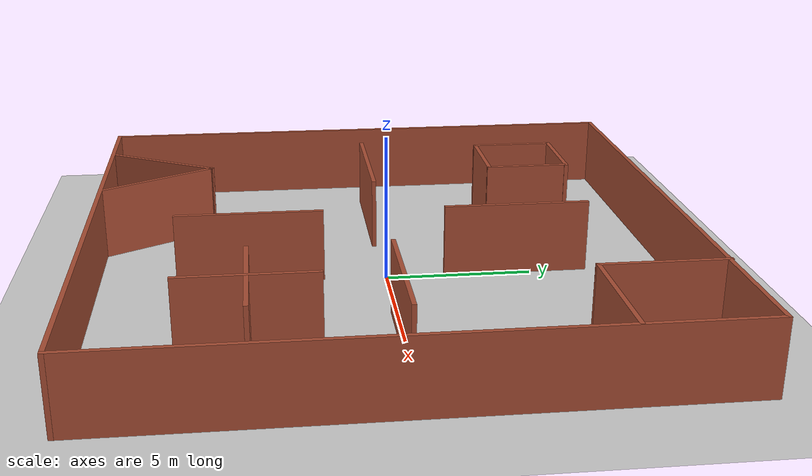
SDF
<sdf version="1.7">
 <world name="default">
  <light name="sun" type="directional">
   <pose>0 0 10 0 -0 0</pose>
   <diffuse>0.8 0.8 0.8 1</diffuse>
   <specular>0.1 0.1 0.1 1</specular>
   <attenuation>
    <range>1000</range>
    <constant>0.9</constant>
    <linear>0.01</linear>
    <quadratic>0.001</quadratic>
   </attenuation>
   <direction>-0.5 0.5 -1</direction>
   <spot><inner_angle>0</inner_angle><outer_angle>0</outer_angle><falloff>0</falloff></spot>
  </light>
  <model name="ground_plane">
   <static>1</static>
   <link name="link">
    <collision name="collision">
     <geometry><plane><normal>0 0 1</normal><size>100 100</size></plane></geometry>
     <surface><friction><ode><mu>100</mu><mu2>50</mu2></ode></friction></surface>
    </collision>
    <visual name="visual">
     <cast_shadows>0</cast_shadows>
     <geometry><plane><normal>0 0 1</normal><size>100 100</size></plane></geometry>
     <material>
      <script><uri>file://media/materials/scripts/gazebo.material</uri><name>Gazebo/Grey</name></script>
     </material>
    </visual>
   </link>
  </model>
  <gravity>0 0 -9.8</gravity>
  <magnetic_field>6e-06 2.3e-05 -4.2e-05</magnetic_field>
  <atmosphere type="adiabatic"/>
  <physics name="default_physics" default="0" type="ode">
   <max_step_size>0.001</max_step_size>
   <real_time_factor>1</real_time_factor>
   <real_time_update_rate>1000</real_time_update_rate>
  </physics>
  <scene><ambient>0.4 0.4 0.4 1</ambient><background>0.7 0.7 0.7 1</background><shadows>1</shadows></scene>
  <spherical_coordinates>
   <surface_model>EARTH_WGS84</surface_model>
   <latitude_deg>0</latitude_deg>
   <longitude_deg>0</longitude_deg>
   <elevation>0</elevation>
   <heading_deg>0</heading_deg>
  </spherical_coordinates>
  <model name="bookshelf">
   <static>1</static>
   <link name="link">
    <inertial><mass>1</mass></inertial>
    <collision name="back">
     <pose>0 0.005 0.6 0 -0 0</pose>
     <geometry><box><size>0.9 0.01 1.2</size></box></geometry>
    </collision>
    <visual name="visual1">
     <pose>0 0.005 0.6 0 -0 0</pose>
     <geometry><box><size>0.9 0.01 1.2</size></box></geometry>
     <material>
      <script><uri>file://media/materials/scripts/gazebo.material</uri><name>Gazebo/Wood</name></script>
     </material>
    </visual>
    <collision name="left_side">
     <pose>0.45 -0.195 0.6 0 -0 0</pose>
     <geometry><box><size>0.02 0.4 1.2</size></box></geometry>
    </collision>
    <visual name="visual2">
     <pose>0.45 -0.195 0.6 0 -0 0</pose>
     <geometry><box><size>0.02 0.4 1.2</size></box></geometry>
     <material>
      <script><uri>file://media/materials/scripts/gazebo.material</uri><name>Gazebo/Wood</name></script>
     </material>
    </visual>
    <collision name="right_side">
     <pose>-0.45 -0.195 0.6 0 -0 0</pose>
     <geometry><box><size>0.02 0.4 1.2</size></box></geometry>
    </collision>
    <visual name="visual3">
     <pose>-0.45 -0.195 0.6 0 -0 0</pose>
     <geometry><box><size>0.02 0.4 1.2</size></box></geometry>
     <material>
      <script><uri>file://media/materials/scripts/gazebo.material</uri><name>Gazebo/Wood</name></script>
     </material>
    </visual>
    <collision name="bottom">
     <pose>0 -0.195 0.03 0 -0 0</pose>
     <geometry><box><size>0.88 0.4 0.06</size></box></geometry>
    </collision>
    <visual name="visual4">
     <pose>0 -0.195 0.03 0 -0 0</pose>
     <geometry><box><size>0.88 0.4 0.06</size></box></geometry>
     <material>
      <script><uri>file://media/materials/scripts/gazebo.material</uri><name>Gazebo/Wood</name></script>
     </material>
    </visual>
    <collision name="top">
     <pose>0 -0.195 1.19 0 -0 0</pose>
     <geometry><box><size>0.88 0.4 0.02</size></box></geometry>
    </collision>
    <visual name="visual5">
     <pose>0 -0.195 1.19 0 -0 0</pose>
     <geometry><box><size>0.88 0.4 0.02</size></box></geometry>
     <material>
      <script><uri>file://media/materials/scripts/gazebo.material</uri><name>Gazebo/Wood</name></script>
     </material>
    </visual>
    <collision name="low_shelf">
     <pose>0 -0.195 0.43 0 -0 0</pose>
     <geometry><box><size>0.88 0.4 0.02</size></box></geometry>
    </collision>
    <visual name="visual6">
     <pose>0 -0.195 0.43 0 -0 0</pose>
     <geometry><box><size>0.88 0.4 0.02</size></box></geometry>
     <material>
      <script><uri>file://media/materials/scripts/gazebo.material</uri><name>Gazebo/Wood</name></script>
     </material>
    </visual>
    <collision name="high_shelf">
     <pose>0 -0.195 0.8 0 -0 0</pose>
     <geometry><box><size>0.88 0.4 0.02</size></box></geometry>
    </collision>
    <visual name="visual7">
     <pose>0 -0.195 0.8 0 -0 0</pose>
     <geometry><box><size>0.88 0.4 0.02</size></box></geometry>
     <material>
      <script><uri>file://media/materials/scripts/gazebo.material</uri><name>Gazebo/Wood</name></script>
     </material>
    </visual>
   </link>
   <pose>4.52748 -4.08894 0 0 -0 0</pose>
  </model>
  <model name="container">
   <pose>-0.141175 0.01174 0 0 -0 0</pose>
   <link name="Wall_10">
    <collision name="Wall_10_Collision">
     <geometry><box><size>19.75 0.15 2.5</size></box></geometry>
     <pose>0 0 1.25 0 -0 0</pose>
    </collision>
    <visual name="Wall_10_Visual">
     <pose>0 0 1.25 0 -0 0</pose>
     <geometry><box><size>19.75 0.15 2.5</size></box></geometry>
     <material>
      <script><uri>file://media/materials/scripts/gazebo.material</uri><name>Gazebo/Bricks</name></script>
      <ambient>1 1 1 1</ambient>
     </material>
     <meta><layer>0</layer></meta>
    </visual>
    <pose>-0 9.77762 0 0 -0 0</pose>
   </link>
   <link name="Wall_11">
    <collision name="Wall_11_Collision">
     <geometry><box><size>19.75 0.15 2.5</size></box></geometry>
     <pose>0 0 1.25 0 -0 0</pose>
    </collision>
    <visual name="Wall_11_Visual">
     <pose>0 0 1.25 0 -0 0</pose>
     <geometry><box><size>19.75 0.15 2.5</size></box></geometry>
     <material>
      <script><uri>file://media/materials/scripts/gazebo.material</uri><name>Gazebo/Bricks</name></script>
      <ambient>1 1 1 1</ambient>
     </material>
     <meta><layer>0</layer></meta>
    </visual>
    <pose>9.8 -0.02238 0 0 -0 -1.5708</pose>
   </link>
   <link name="Wall_12">
    <collision name="Wall_12_Collision">
     <geometry><box><size>19.75 0.15 2.5</size></box></geometry>
     <pose>0 0 1.25 0 -0 0</pose>
    </collision>
    <visual name="Wall_12_Visual">
     <pose>0 0 1.25 0 -0 0</pose>
     <geometry><box><size>19.75 0.15 2.5</size></box></geometry>
     <material>
      <script><uri>file://media/materials/scripts/gazebo.material</uri><name>Gazebo/Bricks</name></script>
      <ambient>1 1 1 1</ambient>
     </material>
     <meta><layer>0</layer></meta>
    </visual>
    <pose>-0 -9.82238 0 0 -0 3.14159</pose>
   </link>
   <link name="Wall_16">
    <collision name="Wall_16_Collision">
     <geometry><box><size>5 0.15 2.5</size></box></geometry>
     <pose>0 0 1.25 0 -0 0</pose>
    </collision>
    <visual name="Wall_16_Visual">
     <pose>0 0 1.25 0 -0 0</pose>
     <geometry><box><size>5 0.15 2.5</size></box></geometry>
     <material>
      <script><uri>file://media/materials/scripts/gazebo.material</uri><name>Gazebo/Bricks</name></script>
      <ambient>1 1 1 1</ambient>
     </material>
     <meta><layer>0</layer></meta>
    </visual>
    <pose>0.005004 -4.63433 0 0 -0 1.5708</pose>
   </link>
   <link name="Wall_19">
    <collision name="Wall_19_Collision">
     <geometry><box><size>5 0.15 2.5</size></box></geometry>
     <pose>0 0 1.25 0 -0 0</pose>
    </collision>
    <visual name="Wall_19_Visual">
     <pose>0 0 1.25 0 -0 0</pose>
     <geometry><box><size>5 0.15 2.5</size></box></geometry>
     <material>
      <script><uri>file://media/materials/scripts/gazebo.material</uri><name>Gazebo/Bricks</name></script>
      <ambient>1 1 1 1</ambient>
     </material>
     <meta><layer>0</layer></meta>
    </visual>
    <pose>0.064517 4.48127 0 0 -0 -1.5708</pose>
   </link>
   <link name="Wall_21">
    <collision name="Wall_21_Collision">
     <geometry><box><size>5 0.15 2.5</size></box></geometry>
     <pose>0 0 1.25 0 -0 0</pose>
    </collision>
    <visual name="Wall_21_Visual">
     <pose>0 0 1.25 0 -0 0</pose>
     <geometry><box><size>5 0.15 2.5</size></box></geometry>
     <material>
      <script><uri>file://media/materials/scripts/gazebo.material</uri><name>Gazebo/Bricks</name></script>
      <ambient>1 1 1 1</ambient>
     </material>
     <meta><layer>0</layer></meta>
    </visual>
    <pose>-5.3463 -0.136044 0 0 -0 0</pose>
   </link>
   <link name="Wall_23">
    <collision name="Wall_23_Collision">
     <geometry><box><size>5 0.15 2.5</size></box></geometry>
     <pose>0 0 1.25 0 -0 0</pose>
    </collision>
    <visual name="Wall_23_Visual">
     <pose>0 0 1.25 0 -0 0</pose>
     <geometry><box><size>5 0.15 2.5</size></box></geometry>
     <material>
      <script><uri>file://media/materials/scripts/gazebo.material</uri><name>Gazebo/Bricks</name></script>
      <ambient>1 1 1 1</ambient>
     </material>
     <meta><layer>0</layer></meta>
    </visual>
    <pose>5.4453 -0.116206 0 0 -0 0</pose>
   </link>
   <link name="Wall_27">
    <collision name="Wall_27_Collision">
     <geometry><box><size>3 0.15 2.5</size></box></geometry>
     <pose>0 0 1.25 0 -0 0</pose>
    </collision>
    <visual name="Wall_27_Visual">
     <pose>0 0 1.25 0 -0 0</pose>
     <geometry><box><size>3 0.15 2.5</size></box></geometry>
     <material>
      <script><uri>file://media/materials/scripts/gazebo.material</uri><name>Gazebo/Bricks</name></script>
      <ambient>1 1 1 1</ambient>
     </material>
     <meta><layer>0</layer></meta>
    </visual>
    <pose>-6.99763 5.75899 0 0 -0 -1.5708</pose>
   </link>
   <link name="Wall_28">
    <collision name="Wall_28_Collision">
     <geometry><box><size>3 0.15 2.5</size></box></geometry>
     <pose>0 0 1.25 0 -0 0</pose>
    </collision>
    <visual name="Wall_28_Visual">
     <pose>0 0 1.25 0 -0 0</pose>
     <geometry><box><size>3 0.15 2.5</size></box></geometry>
     <material>
      <script><uri>file://media/materials/scripts/gazebo.material</uri><name>Gazebo/Bricks</name></script>
      <ambient>1 1 1 1</ambient>
     </material>
     <meta><layer>0</layer></meta>
    </visual>
    <pose>-5.57263 4.33399 0 0 -0 0</pose>
   </link>
   <link name="Wall_29">
    <collision name="Wall_29_Collision">
     <geometry><box><size>3 0.15 2.5</size></box></geometry>
     <pose>0 0 1.25 0 -0 0</pose>
    </collision>
    <visual name="Wall_29_Visual">
     <pose>0 0 1.25 0 -0 0</pose>
     <geometry><box><size>3 0.15 2.5</size></box></geometry>
     <material>
      <script><uri>file://media/materials/scripts/gazebo.material</uri><name>Gazebo/Bricks</name></script>
      <ambient>1 1 1 1</ambient>
     </material>
     <meta><layer>0</layer></meta>
    </visual>
    <pose>-4.14763 5.75899 0 0 -0 1.5708</pose>
   </link>
   <link name="Wall_30">
    <collision name="Wall_30_Collision">
     <geometry><box><size>3 0.15 2.5</size></box></geometry>
     <pose>0 0 1.25 0 -0 0</pose>
    </collision>
    <visual name="Wall_30_Visual">
     <pose>0 0 1.25 0 -0 0</pose>
     <geometry><box><size>3 0.15 2.5</size></box></geometry>
     <material>
      <script><uri>file://media/materials/scripts/gazebo.material</uri><name>Gazebo/Bricks</name></script>
      <ambient>1 1 1 1</ambient>
     </material>
     <meta><layer>0</layer></meta>
    </visual>
    <pose>-5.5528 7.26334 0 0 -0 3.14159</pose>
   </link>
   <link name="Wall_32">
    <collision name="Wall_32_Collision">
     <geometry><box><size>4.5 0.15 2.5</size></box></geometry>
     <pose>0 0 1.25 0 -0 0</pose>
    </collision>
    <visual name="Wall_32_Visual">
     <pose>0 0 1.25 0 -0 0</pose>
     <geometry><box><size>4.5 0.15 2.5</size></box></geometry>
     <material>
      <script><uri>file://media/materials/scripts/gazebo.material</uri><name>Gazebo/Bricks</name></script>
      <ambient>1 1 1 1</ambient>
     </material>
     <meta><layer>0</layer></meta>
    </visual>
    <pose>-6.2077 -7.89346 0 0 -0 1.0472</pose>
   </link>
   <link name="Wall_33">
    <collision name="Wall_33_Collision">
     <geometry><box><size>4.5 0.15 2.5</size></box></geometry>
     <pose>0 0 1.25 0 -0 0</pose>
    </collision>
    <visual name="Wall_33_Visual">
     <pose>0 0 1.25 0 -0 0</pose>
     <geometry><box><size>4.5 0.15 2.5</size></box></geometry>
     <material>
      <script><uri>file://media/materials/scripts/gazebo.material</uri><name>Gazebo/Bricks</name></script>
      <ambient>1 1 1 1</ambient>
     </material>
     <meta><layer>0</layer></meta>
    </visual>
    <pose>-4.0327 -7.89346 0 0 -0 -1.0472</pose>
   </link>
   <link name="Wall_35">
    <collision name="Wall_35_Collision">
     <geometry><box><size>4.5 0.15 2.5</size></box></geometry>
     <pose>0 0 1.25 0 -0 0</pose>
    </collision>
    <visual name="Wall_35_Visual">
     <pose>0 0 1.25 0 -0 0</pose>
     <geometry><box><size>4.5 0.15 2.5</size></box></geometry>
     <material>
      <script><uri>file://media/materials/scripts/gazebo.material</uri><name>Gazebo/Bricks</name></script>
      <ambient>1 1 1 1</ambient>
     </material>
     <meta><layer>0</layer></meta>
    </visual>
    <pose>5.28178 -4.71138 0 0 -0 -1.5708</pose>
   </link>
   <link name="Wall_37">
    <collision name="Wall_37_Collision">
     <geometry><box><size>4.5 0.15 2.5</size></box></geometry>
     <pose>0 0 1.25 0 -0 0</pose>
    </collision>
    <visual name="Wall_37_Visual">
     <pose>0 0 1.25 0 -0 0</pose>
     <geometry><box><size>4.5 0.15 2.5</size></box></geometry>
     <material>
      <script><uri>file://media/materials/scripts/gazebo.material</uri><name>Gazebo/Bricks</name></script>
      <ambient>1 1 1 1</ambient>
     </material>
     <meta><layer>0</layer></meta>
    </visual>
    <pose>5.27465 -4.71851 0 0 -0 0</pose>
   </link>
   <link name="Wall_39">
    <collision name="Wall_39_Collision">
     <geometry><box><size>4.25 0.15 2.5</size></box></geometry>
     <pose>0 0 1.25 0 -0 0</pose>
    </collision>
    <visual name="Wall_39_Visual">
     <pose>0 0 1.25 0 -0 0</pose>
     <geometry><box><size>4.25 0.15 2.5</size></box></geometry>
     <material>
      <script><uri>file://media/materials/scripts/gazebo.material</uri><name>Gazebo/Bricks</name></script>
      <ambient>1 1 1 1</ambient>
     </material>
     <meta><layer>0</layer></meta>
    </visual>
    <pose>5.65869 7.77238 0 0 -0 -1.5708</pose>
   </link>
   <link name="Wall_40">
    <collision name="Wall_40_Collision">
     <geometry><box><size>4.25 0.15 2.5</size></box></geometry>
     <pose>0 0 1.25 0 -0 0</pose>
    </collision>
    <visual name="Wall_40_Visual">
     <pose>0 0 1.25 0 -0 0</pose>
     <geometry><box><size>4.25 0.15 2.5</size></box></geometry>
     <material>
      <script><uri>file://media/materials/scripts/gazebo.material</uri><name>Gazebo/Bricks</name></script>
      <ambient>1 1 1 1</ambient>
     </material>
     <meta><layer>0</layer></meta>
    </visual>
    <pose>7.70869 5.72238 0 0 -0 0</pose>
   </link>
   <link name="Wall_9">
    <collision name="Wall_9_Collision">
     <geometry><box><size>19.75 0.15 2.5</size></box></geometry>
     <pose>0 0 1.25 0 -0 0</pose>
    </collision>
    <visual name="Wall_9_Visual">
     <pose>0 0 1.25 0 -0 0</pose>
     <geometry><box><size>19.75 0.15 2.5</size></box></geometry>
     <material>
      <script><uri>file://media/materials/scripts/gazebo.material</uri><name>Gazebo/Bricks</name></script>
      <ambient>1 1 1 1</ambient>
     </material>
     <meta><layer>0</layer></meta>
    </visual>
    <pose>-9.8 -0.02238 0 0 -0 1.5708</pose>
   </link>
   <static>1</static>
  </model>
 </world>
</sdf>
